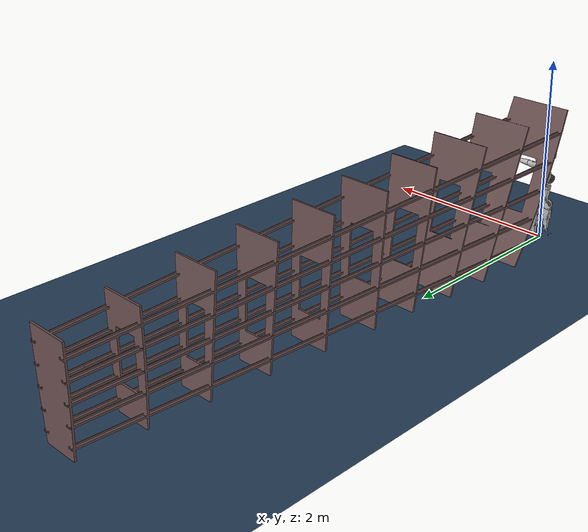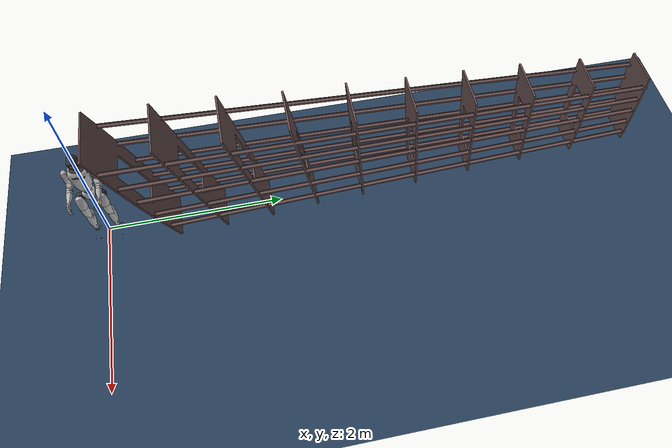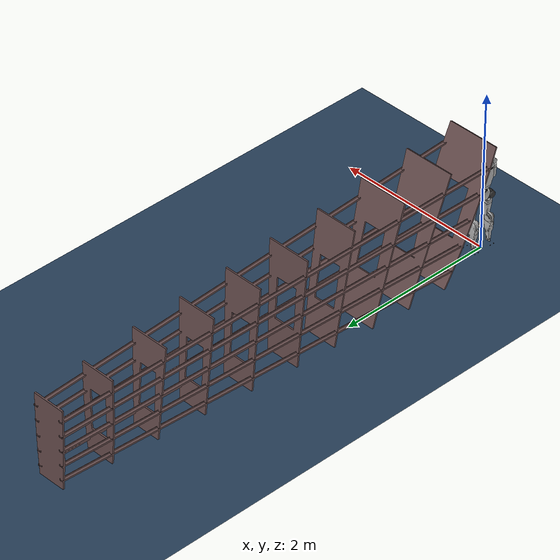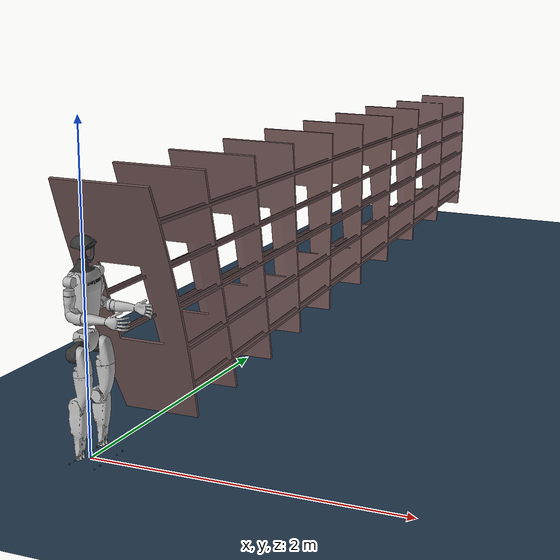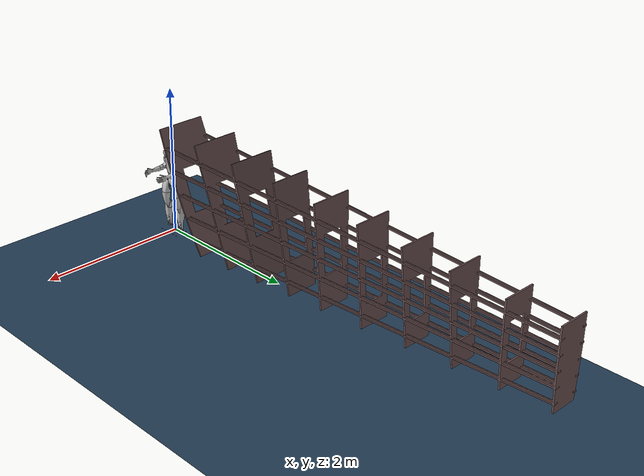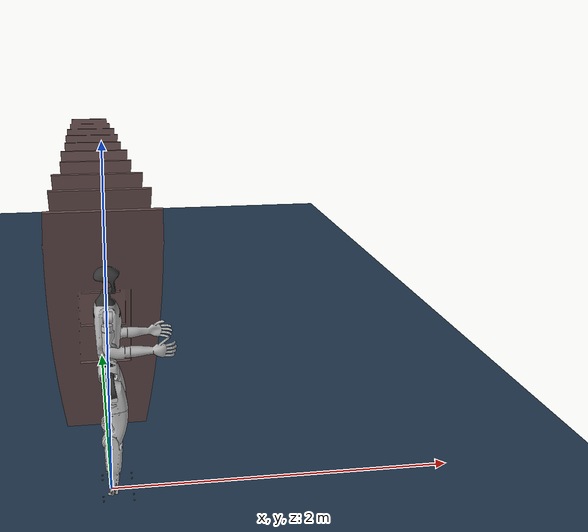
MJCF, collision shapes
<mujoco model="g1 scene">

  <compiler angle="radian"/>
  <include file="g1_description/g1_23dof.xml"/>

  <!-- WORLD ENVIRONMENT-->
  <include file="world_description/vertical_stabilizer.xml" />

  <statistic center="0 0 0.6" extent="2.0"/>

  <default>
      <default class="world_visual">
          <geom condim="1" contype="0" conaffinity="0" group="0"/>
      </default>
      <default class="world_collision">
          <geom contype="3" conaffinity="2" condim="6" group="2" friction="0.5 0.005 0.0001"/>
      </default>
  </default>

  <visual>
    <headlight diffuse="0.6 0.6 0.6" ambient="0.3 0.3 0.3" specular="0 0 0"/>
    <rgba haze="0.15 0.25 0.35 1"/>
    <global azimuth="160" elevation="-20"/>
  </visual>

  <asset>
    <texture type="skybox" builtin="gradient" rgb1="0.3 0.5 0.7" rgb2="0 0 0" width="512" height="3072"/>
    <texture type="2d" name="groundplane" builtin="checker" mark="edge" rgb1="0.2 0.3 0.4" rgb2="0.1 0.2 0.3"
      markrgb="0.8 0.8 0.8" width="300" height="300"/>
    <material name="groundplane" texture="groundplane" texuniform="true" texrepeat="5 5" reflectance="0.2"/>
  </asset>

  <worldbody>
    <light pos="0 0 3.5" dir="0 0 -1" directional="true"/>
    <geom name="floor" size="0 0 0.05" type="plane" material="groundplane" class="world_collision"/>
  </worldbody>

</mujoco>

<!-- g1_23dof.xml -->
<mujoco model="g1_23dof">

  <asset>
    <mesh name="pelvis" file="g1_description/meshes/pelvis.STL"/>
    <mesh name="pelvis_contour_link" file="g1_description/meshes/pelvis_contour_link.STL"/>
    <mesh name="left_hip_pitch_link" file="g1_description/meshes/left_hip_pitch_link.STL"/>
    <mesh name="left_hip_roll_link" file="g1_description/meshes/left_hip_roll_link.STL"/>
    <mesh name="left_hip_yaw_link" file="g1_description/meshes/left_hip_yaw_link.STL"/>
    <mesh name="left_knee_link" file="g1_description/meshes/left_knee_link.STL"/>
    <mesh name="left_ankle_pitch_link" file="g1_description/meshes/left_ankle_pitch_link.STL"/>
    <mesh name="left_ankle_roll_link" file="g1_description/meshes/left_ankle_roll_link.STL"/>
    <mesh name="right_hip_pitch_link" file="g1_description/meshes/right_hip_pitch_link.STL"/>
    <mesh name="right_hip_roll_link" file="g1_description/meshes/right_hip_roll_link.STL"/>
    <mesh name="right_hip_yaw_link" file="g1_description/meshes/right_hip_yaw_link.STL"/>
    <mesh name="right_knee_link" file="g1_description/meshes/right_knee_link.STL"/>
    <mesh name="right_ankle_pitch_link" file="g1_description/meshes/right_ankle_pitch_link.STL"/>
    <mesh name="right_ankle_roll_link" file="g1_description/meshes/right_ankle_roll_link.STL"/>
    <mesh name="waist_yaw_link" file="g1_description/meshes/waist_yaw_link.STL"/>
    <mesh name="torso_link" file="g1_description/meshes/torso_link.STL"/>
    <mesh name="logo_link" file="g1_description/meshes/logo_link.STL"/>
    <mesh name="head_link" file="g1_description/meshes/head_link.STL"/>
    <mesh name="waist_support_link" file="g1_description/meshes/waist_support_link.STL"/>
    <mesh name="left_shoulder_pitch_link" file="g1_description/meshes/left_shoulder_pitch_link.STL"/>
    <mesh name="left_shoulder_roll_link" file="g1_description/meshes/left_shoulder_roll_link.STL"/>
    <mesh name="left_shoulder_yaw_link" file="g1_description/meshes/left_shoulder_yaw_link.STL"/>
    <mesh name="left_elbow_link" file="g1_description/meshes/left_elbow_link.STL"/>
    <mesh name="left_wrist_roll_rubber_hand" file="g1_description/meshes/left_wrist_roll_rubber_hand.STL"/>
    <mesh name="right_shoulder_pitch_link" file="g1_description/meshes/right_shoulder_pitch_link.STL"/>
    <mesh name="right_shoulder_roll_link" file="g1_description/meshes/right_shoulder_roll_link.STL"/>
    <mesh name="right_shoulder_yaw_link" file="g1_description/meshes/right_shoulder_yaw_link.STL"/>
    <mesh name="right_elbow_link" file="g1_description/meshes/right_elbow_link.STL"/>
    <mesh name="right_wrist_roll_rubber_hand" file="g1_description/meshes/right_wrist_roll_rubber_hand.STL"/>
  </asset>

  <worldbody>
    <body name="pelvis" pos="0 0 0.793">
      <inertial pos="0 0 -0.07605" quat="1 0 -0.000399148 0" mass="3.813" diaginertia="0.010549 0.0093089 0.0079184"/>
      <joint name="floating_base_joint" type="free" limited="false" actuatorfrclimited="false"/>
      <geom type="mesh" contype="0" conaffinity="0" group="1" density="0" rgba="0.2 0.2 0.2 1" mesh="pelvis"/>
      <geom type="mesh" contype="0" conaffinity="0" group="1" density="0" rgba="0.7 0.7 0.7 1" mesh="pelvis_contour_link"/>
      <geom type="mesh" rgba="0.7 0.7 0.7 1" mesh="pelvis_contour_link"/>
      <site name="imu_in_pelvis" size="0.01" pos="0.04525 0 -0.08339"/>
      <body name="left_hip_pitch_link" pos="0 0.064452 -0.1027">
        <inertial pos="0.002741 0.047791 -0.02606" quat="0.954862 0.293964 0.0302556 0.030122" mass="1.35" diaginertia="0.00181517 0.00153422 0.00116212"/>
        <joint name="left_hip_pitch_joint" pos="0 0 0" axis="0 1 0" range="-2.5307 2.8798" actuatorfrcrange="-88 88"/>
        <geom type="mesh" contype="0" conaffinity="0" group="1" density="0" rgba="0.2 0.2 0.2 1" mesh="left_hip_pitch_link"/>
        <geom type="mesh" rgba="0.2 0.2 0.2 1" mesh="left_hip_pitch_link"/>
        <body name="left_hip_roll_link" pos="0 0.052 -0.030465" quat="0.996179 0 -0.0873386 0">
          <inertial pos="0.029812 -0.001045 -0.087934" quat="0.977808 -1.97119e-05 0.205576 -0.0403793" mass="1.52" diaginertia="0.00254986 0.00241169 0.00148755"/>
          <joint name="left_hip_roll_joint" pos="0 0 0" axis="1 0 0" range="-0.5236 2.9671" actuatorfrcrange="-88 88"/>
          <geom type="mesh" contype="0" conaffinity="0" group="1" density="0" rgba="0.7 0.7 0.7 1" mesh="left_hip_roll_link"/>
          <geom type="mesh" rgba="0.7 0.7 0.7 1" mesh="left_hip_roll_link"/>
          <body name="left_hip_yaw_link" pos="0.025001 0 -0.12412">
            <inertial pos="-0.057709 -0.010981 -0.15078" quat="0.600598 0.15832 0.223482 0.751181" mass="1.702" diaginertia="0.00776166 0.00717575 0.00160139"/>
            <joint name="left_hip_yaw_joint" pos="0 0 0" axis="0 0 1" range="-2.7576 2.7576" actuatorfrcrange="-88 88"/>
            <geom type="mesh" contype="0" conaffinity="0" group="1" density="0" rgba="0.7 0.7 0.7 1" mesh="left_hip_yaw_link"/>
            <geom type="mesh" rgba="0.7 0.7 0.7 1" mesh="left_hip_yaw_link"/>
            <body name="left_knee_link" pos="-0.078273 0.0021489 -0.17734" quat="0.996179 0 0.0873386 0">
              <inertial pos="0.005457 0.003964 -0.12074" quat="0.923418 -0.0327699 0.0158246 0.382067" mass="1.932" diaginertia="0.0113804 0.0112778 0.00146458"/>
              <joint name="left_knee_joint" pos="0 0 0" axis="0 1 0" range="-0.087267 2.8798" actuatorfrcrange="-139 139"/>
              <geom type="mesh" contype="0" conaffinity="0" group="1" density="0" rgba="0.7 0.7 0.7 1" mesh="left_knee_link"/>
              <geom type="mesh" rgba="0.7 0.7 0.7 1" mesh="left_knee_link"/>
              <body name="left_ankle_pitch_link" pos="0 -9.4445e-05 -0.30001">
                <inertial pos="-0.007269 0 0.011137" quat="0.603053 0.369225 0.369225 0.603053" mass="0.074" diaginertia="1.89e-05 1.40805e-05 6.9195e-06"/>
                <joint name="left_ankle_pitch_joint" pos="0 0 0" axis="0 1 0" range="-0.87267 0.5236" actuatorfrcrange="-50 50"/>
                <geom type="mesh" contype="0" conaffinity="0" group="1" density="0" rgba="0.7 0.7 0.7 1" mesh="left_ankle_pitch_link"/>
                <geom type="mesh" rgba="0.7 0.7 0.7 1" mesh="left_ankle_pitch_link"/>
                <body name="left_ankle_roll_link" pos="0 0 -0.017558">
                  <inertial pos="0.026505 0 -0.016425" quat="-0.000481092 0.728482 -0.000618967 0.685065" mass="0.608" diaginertia="0.00167218 0.0016161 0.000217621"/>
                  <joint name="left_ankle_roll_joint" pos="0 0 0" axis="1 0 0" range="-0.2618 0.2618" actuatorfrcrange="-50 50"/>
                  <geom type="mesh" contype="0" conaffinity="0" group="1" density="0" rgba="0.2 0.2 0.2 1" mesh="left_ankle_roll_link"/>
                  <geom size="0.005" pos="-0.05 0.025 -0.03" rgba="0.2 0.2 0.2 1"/>
                  <geom size="0.005" pos="-0.05 -0.025 -0.03" rgba="0.2 0.2 0.2 1"/>
                  <geom size="0.005" pos="0.12 0.03 -0.03" rgba="0.2 0.2 0.2 1"/>
                  <geom size="0.005" pos="0.12 -0.03 -0.03" rgba="0.2 0.2 0.2 1"/>
                </body>
              </body>
            </body>
          </body>
        </body>
      </body>
      <body name="right_hip_pitch_link" pos="0 -0.064452 -0.1027">
        <inertial pos="0.002741 -0.047791 -0.02606" quat="0.954862 -0.293964 0.0302556 -0.030122" mass="1.35" diaginertia="0.00181517 0.00153422 0.00116212"/>
        <joint name="right_hip_pitch_joint" pos="0 0 0" axis="0 1 0" range="-2.5307 2.8798" actuatorfrcrange="-88 88"/>
        <geom type="mesh" contype="0" conaffinity="0" group="1" density="0" rgba="0.2 0.2 0.2 1" mesh="right_hip_pitch_link"/>
        <geom type="mesh" rgba="0.2 0.2 0.2 1" mesh="right_hip_pitch_link"/>
        <body name="right_hip_roll_link" pos="0 -0.052 -0.030465" quat="0.996179 0 -0.0873386 0">
          <inertial pos="0.029812 0.001045 -0.087934" quat="0.977808 1.97119e-05 0.205576 0.0403793" mass="1.52" diaginertia="0.00254986 0.00241169 0.00148755"/>
          <joint name="right_hip_roll_joint" pos="0 0 0" axis="1 0 0" range="-2.9671 0.5236" actuatorfrcrange="-88 88"/>
          <geom type="mesh" contype="0" conaffinity="0" group="1" density="0" rgba="0.7 0.7 0.7 1" mesh="right_hip_roll_link"/>
          <geom type="mesh" rgba="0.7 0.7 0.7 1" mesh="right_hip_roll_link"/>
          <body name="right_hip_yaw_link" pos="0.025001 0 -0.12412">
            <inertial pos="-0.057709 0.010981 -0.15078" quat="0.751181 0.223482 0.15832 0.600598" mass="1.702" diaginertia="0.00776166 0.00717575 0.00160139"/>
            <joint name="right_hip_yaw_joint" pos="0 0 0" axis="0 0 1" range="-2.7576 2.7576" actuatorfrcrange="-88 88"/>
            <geom type="mesh" contype="0" conaffinity="0" group="1" density="0" rgba="0.7 0.7 0.7 1" mesh="right_hip_yaw_link"/>
            <geom type="mesh" rgba="0.7 0.7 0.7 1" mesh="right_hip_yaw_link"/>
            <body name="right_knee_link" pos="-0.078273 -0.0021489 -0.17734" quat="0.996179 0 0.0873386 0">
              <inertial pos="0.005457 -0.003964 -0.12074" quat="0.923439 0.0345276 0.0116333 -0.382012" mass="1.932" diaginertia="0.011374 0.0112843 0.00146452"/>
              <joint name="right_knee_joint" pos="0 0 0" axis="0 1 0" range="-0.087267 2.8798" actuatorfrcrange="-139 139"/>
              <geom type="mesh" contype="0" conaffinity="0" group="1" density="0" rgba="0.7 0.7 0.7 1" mesh="right_knee_link"/>
              <geom type="mesh" rgba="0.7 0.7 0.7 1" mesh="right_knee_link"/>
              <body name="right_ankle_pitch_link" pos="0 9.4445e-05 -0.30001">
                <inertial pos="-0.007269 0 0.011137" quat="0.603053 0.369225 0.369225 0.603053" mass="0.074" diaginertia="1.89e-05 1.40805e-05 6.9195e-06"/>
                <joint name="right_ankle_pitch_joint" pos="0 0 0" axis="0 1 0" range="-0.87267 0.5236" actuatorfrcrange="-50 50"/>
                <geom type="mesh" contype="0" conaffinity="0" group="1" density="0" rgba="0.7 0.7 0.7 1" mesh="right_ankle_pitch_link"/>
                <geom type="mesh" rgba="0.7 0.7 0.7 1" mesh="right_ankle_pitch_link"/>
                <body name="right_ankle_roll_link" pos="0 0 -0.017558">
                  <inertial pos="0.026505 0 -0.016425" quat="0.000481092 0.728482 0.000618967 0.685065" mass="0.608" diaginertia="0.00167218 0.0016161 0.000217621"/>
                  <joint name="right_ankle_roll_joint" pos="0 0 0" axis="1 0 0" range="-0.2618 0.2618" actuatorfrcrange="-50 50"/>
                  <geom type="mesh" contype="0" conaffinity="0" group="1" density="0" rgba="0.2 0.2 0.2 1" mesh="right_ankle_roll_link"/>
                  <geom size="0.005" pos="-0.05 0.025 -0.03" rgba="0.2 0.2 0.2 1"/>
                  <geom size="0.005" pos="-0.05 -0.025 -0.03" rgba="0.2 0.2 0.2 1"/>
                  <geom size="0.005" pos="0.12 0.03 -0.03" rgba="0.2 0.2 0.2 1"/>
                  <geom size="0.005" pos="0.12 -0.03 -0.03" rgba="0.2 0.2 0.2 1"/>
                </body>
              </body>
            </body>
          </body>
        </body>
      </body>
      <body name="torso_link" pos="-0.0039635 0 0.054">
        <inertial pos="0.0034309 0.00025505 0.174524" quat="0.99988 0.000261157 0.0149809 -0.0038211" mass="9.842" diaginertia="0.135151 0.123088 0.0327256"/>
        <joint name="waist_yaw_joint" pos="0 0 0" axis="0 0 1" range="-2.618 2.618" actuatorfrcrange="-88 88"/>
        <geom type="mesh" contype="0" conaffinity="0" group="1" density="0" rgba="0.7 0.7 0.7 1" mesh="torso_link"/>
        <geom type="mesh" rgba="0.7 0.7 0.7 1" mesh="torso_link"/>
        <geom pos="0.0039635 0 -0.054" quat="1 0 0 0" type="mesh" contype="0" conaffinity="0" group="1" density="0" rgba="0.7 0.7 0.7 1" mesh="waist_yaw_link"/>
        <geom pos="0.0039635 0 -0.054" quat="1 0 0 0" type="mesh" contype="0" conaffinity="0" group="1" density="0" rgba="0.2 0.2 0.2 1" mesh="logo_link"/>
        <geom pos="0.0039635 0 -0.054" quat="1 0 0 0" type="mesh" rgba="0.2 0.2 0.2 1" mesh="logo_link"/>
        <geom pos="0.0039635 0 -0.054" type="mesh" contype="0" conaffinity="0" group="1" density="0" rgba="0.2 0.2 0.2 1" mesh="head_link"/>
        <geom pos="0.0039635 0 -0.054" type="mesh" rgba="0.2 0.2 0.2 1" mesh="head_link"/>
        <geom pos="0.0039635 0 -0.054" quat="1 0 0 0" type="mesh" contype="0" conaffinity="0" group="1" density="0" rgba="0.7 0.7 0.7 1" mesh="waist_support_link"/>
        <geom pos="0.0039635 0 -0.054" quat="1 0 0 0" type="mesh" rgba="0.7 0.7 0.7 1" mesh="waist_support_link"/>
        <site name="imu_in_torso" size="0.01" pos="-0.03959 -0.00224 0.13792"/>
        <body name="left_shoulder_pitch_link" pos="0.0039563 0.10022 0.23778" quat="0.990264 0.139201 1.38722e-05 -9.86868e-05">
          <inertial pos="0 0.035892 -0.011628" quat="0.654152 0.0130458 -0.326267 0.68225" mass="0.718" diaginertia="0.000465864 0.000432842 0.000406394"/>
          <joint name="left_shoulder_pitch_joint" pos="0 0 0" axis="0 1 0" range="-3.0892 2.6704" actuatorfrcrange="-25 25"/>
          <geom type="mesh" contype="0" conaffinity="0" group="1" density="0" rgba="0.7 0.7 0.7 1" mesh="left_shoulder_pitch_link"/>
          <geom size="0.03 0.025" pos="0 0.04 -0.01" quat="0.707107 0 0.707107 0" type="cylinder" rgba="0.7 0.7 0.7 1"/>
          <body name="left_shoulder_roll_link" pos="0 0.038 -0.013831" quat="0.990268 -0.139172 0 0">
            <inertial pos="-0.000227 0.00727 -0.063243" quat="0.701256 -0.0196223 -0.00710317 0.712604" mass="0.643" diaginertia="0.000691311 0.000618011 0.000388977"/>
            <joint name="left_shoulder_roll_joint" pos="0 0 0" axis="1 0 0" range="-1.5882 2.2515" actuatorfrcrange="-25 25"/>
            <geom type="mesh" contype="0" conaffinity="0" group="1" density="0" rgba="0.7 0.7 0.7 1" mesh="left_shoulder_roll_link"/>
            <geom size="0.03 0.015" pos="-0.004 0.006 -0.053" type="cylinder" rgba="0.7 0.7 0.7 1"/>
            <body name="left_shoulder_yaw_link" pos="0 0.00624 -0.1032">
              <inertial pos="0.010773 -0.002949 -0.072009" quat="0.716879 -0.0964829 -0.0679942 0.687134" mass="0.734" diaginertia="0.00106187 0.00103217 0.000400661"/>
              <joint name="left_shoulder_yaw_joint" pos="0 0 0" axis="0 0 1" range="-2.618 2.618" actuatorfrcrange="-25 25"/>
              <geom type="mesh" contype="0" conaffinity="0" group="1" density="0" rgba="0.7 0.7 0.7 1" mesh="left_shoulder_yaw_link"/>
              <geom type="mesh" rgba="0.7 0.7 0.7 1" mesh="left_shoulder_yaw_link"/>
              <body name="left_elbow_link" pos="0.015783 0 -0.080518">
                <inertial pos="0.064956 0.004454 -0.010062" quat="0.541765 0.636132 0.388821 0.388129" mass="0.6" diaginertia="0.000443035 0.000421612 0.000259353"/>
                <joint name="left_elbow_joint" pos="0 0 0" axis="0 1 0" range="-1.0472 2.0944" actuatorfrcrange="-25 25"/>
                <geom type="mesh" contype="0" conaffinity="0" group="1" density="0" rgba="0.7 0.7 0.7 1" mesh="left_elbow_link"/>
                <geom type="mesh" rgba="0.7 0.7 0.7 1" mesh="left_elbow_link"/>
                <body name="left_wrist_roll_rubber_hand" pos="0.1 0.00188791 -0.01">
                  <inertial pos="0.107947 0.00163512 0.00202245" quat="0.494051 0.504265 0.48416 0.516933" mass="0.356929" diaginertia="0.00200292 0.0019426 0.000195232"/>
                  <joint name="left_wrist_roll_joint" pos="0 0 0" axis="1 0 0" range="-1.97222 1.97222" actuatorfrcrange="-25 25"/>
                  <geom type="mesh" contype="0" conaffinity="0" group="1" density="0" rgba="0.7 0.7 0.7 1" mesh="left_wrist_roll_rubber_hand"/>
                  <geom type="mesh" rgba="0.7 0.7 0.7 1" mesh="left_wrist_roll_rubber_hand"/>
                </body>
              </body>
            </body>
          </body>
        </body>
        <body name="right_shoulder_pitch_link" pos="0.0039563 -0.10021 0.23778" quat="0.990264 -0.139201 1.38722e-05 9.86868e-05">
          <inertial pos="0 -0.035892 -0.011628" quat="0.68225 -0.326267 0.0130458 0.654152" mass="0.718" diaginertia="0.000465864 0.000432842 0.000406394"/>
          <joint name="right_shoulder_pitch_joint" pos="0 0 0" axis="0 1 0" range="-3.0892 2.6704" actuatorfrcrange="-25 25"/>
          <geom type="mesh" contype="0" conaffinity="0" group="1" density="0" rgba="0.7 0.7 0.7 1" mesh="right_shoulder_pitch_link"/>
          <geom size="0.03 0.025" pos="0 -0.04 -0.01" quat="0.707107 0 0.707107 0" type="cylinder" rgba="0.7 0.7 0.7 1"/>
          <body name="right_shoulder_roll_link" pos="0 -0.038 -0.013831" quat="0.990268 0.139172 0 0">
            <inertial pos="-0.000227 -0.00727 -0.063243" quat="0.712604 -0.00710317 -0.0196223 0.701256" mass="0.643" diaginertia="0.000691311 0.000618011 0.000388977"/>
            <joint name="right_shoulder_roll_joint" pos="0 0 0" axis="1 0 0" range="-2.2515 1.5882" actuatorfrcrange="-25 25"/>
            <geom type="mesh" contype="0" conaffinity="0" group="1" density="0" rgba="0.7 0.7 0.7 1" mesh="right_shoulder_roll_link"/>
            <geom size="0.03 0.015" pos="-0.004 -0.006 -0.053" type="cylinder" rgba="0.7 0.7 0.7 1"/>
            <body name="right_shoulder_yaw_link" pos="0 -0.00624 -0.1032">
              <inertial pos="0.010773 0.002949 -0.072009" quat="0.687134 -0.0679942 -0.0964829 0.716879" mass="0.734" diaginertia="0.00106187 0.00103217 0.000400661"/>
              <joint name="right_shoulder_yaw_joint" pos="0 0 0" axis="0 0 1" range="-2.618 2.618" actuatorfrcrange="-25 25"/>
              <geom type="mesh" contype="0" conaffinity="0" group="1" density="0" rgba="0.7 0.7 0.7 1" mesh="right_shoulder_yaw_link"/>
              <geom type="mesh" rgba="0.7 0.7 0.7 1" mesh="right_shoulder_yaw_link"/>
              <body name="right_elbow_link" pos="0.015783 0 -0.080518">
                <inertial pos="0.064956 -0.004454 -0.010062" quat="0.388129 0.388821 0.636132 0.541765" mass="0.6" diaginertia="0.000443035 0.000421612 0.000259353"/>
                <joint name="right_elbow_joint" pos="0 0 0" axis="0 1 0" range="-1.0472 2.0944" actuatorfrcrange="-25 25"/>
                <geom type="mesh" contype="0" conaffinity="0" group="1" density="0" rgba="0.7 0.7 0.7 1" mesh="right_elbow_link"/>
                <geom type="mesh" rgba="0.7 0.7 0.7 1" mesh="right_elbow_link"/>
                <body name="right_wrist_roll_rubber_hand" pos="0.1 -0.00188791 -0.01">
                  <inertial pos="0.107947 -0.00163512 0.00202245" quat="0.516933 0.48416 0.504265 0.494051" mass="0.356929" diaginertia="0.00200292 0.0019426 0.000195232"/>
                  <joint name="right_wrist_roll_joint" pos="0 0 0" axis="1 0 0" range="-1.97222 1.97222" actuatorfrcrange="-25 25"/>
                  <geom type="mesh" contype="0" conaffinity="0" group="1" density="0" rgba="0.7 0.7 0.7 1" mesh="right_wrist_roll_rubber_hand"/>
                  <geom type="mesh" rgba="0.7 0.7 0.7 1" mesh="right_wrist_roll_rubber_hand"/>
                </body>
              </body>
            </body>
          </body>
        </body>
      </body>
    </body>
  </worldbody>

  <actuator>
    <motor name="left_hip_pitch_joint" joint="left_hip_pitch_joint"/>
    <motor name="left_hip_roll_joint" joint="left_hip_roll_joint"/>
    <motor name="left_hip_yaw_joint" joint="left_hip_yaw_joint"/>
    <motor name="left_knee_joint" joint="left_knee_joint"/>
    <motor name="left_ankle_pitch_joint" joint="left_ankle_pitch_joint"/>
    <motor name="left_ankle_roll_joint" joint="left_ankle_roll_joint"/>
    <motor name="right_hip_pitch_joint" joint="right_hip_pitch_joint"/>
    <motor name="right_hip_roll_joint" joint="right_hip_roll_joint"/>
    <motor name="right_hip_yaw_joint" joint="right_hip_yaw_joint"/>
    <motor name="right_knee_joint" joint="right_knee_joint"/>
    <motor name="right_ankle_pitch_joint" joint="right_ankle_pitch_joint"/>
    <motor name="right_ankle_roll_joint" joint="right_ankle_roll_joint"/>
    <motor name="waist_yaw_joint" joint="waist_yaw_joint"/>
    <motor name="left_shoulder_pitch_joint" joint="left_shoulder_pitch_joint"/>
    <motor name="left_shoulder_roll_joint" joint="left_shoulder_roll_joint"/>
    <motor name="left_shoulder_yaw_joint" joint="left_shoulder_yaw_joint"/>
    <motor name="left_elbow_joint" joint="left_elbow_joint"/>
    <motor name="left_wrist_roll_joint" joint="left_wrist_roll_joint"/>
    <motor name="right_shoulder_pitch_joint" joint="right_shoulder_pitch_joint"/>
    <motor name="right_shoulder_roll_joint" joint="right_shoulder_roll_joint"/>
    <motor name="right_shoulder_yaw_joint" joint="right_shoulder_yaw_joint"/>
    <motor name="right_elbow_joint" joint="right_elbow_joint"/>
    <motor name="right_wrist_roll_joint" joint="right_wrist_roll_joint"/>
  </actuator>

  <sensor>
    <gyro name="imu-torso-angular-velocity" site="imu_in_torso" noise="5e-4" cutoff="34.9"/>
    <accelerometer name="imu-torso-linear-acceleration" site="imu_in_torso" noise="1e-2" cutoff="157"/>
    <gyro name="imu-pelvis-angular-velocity" site="imu_in_pelvis" noise="5e-4" cutoff="34.9"/>
    <accelerometer name="imu-pelvis-linear-acceleration" site="imu_in_pelvis" noise="1e-2" cutoff="157"/>
  </sensor>

  <!-- setup scene -->
</mujoco>

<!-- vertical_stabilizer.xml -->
<mujoco model="vertical_stabilizer">

    <!-- NOTE: .obj are exported in cm; .stl are exported in .mm (if this is the units in fusion); mujoco expects meters. Scale accordingly. -->

    <asset>
        <mesh name="vertical_stabilizer_mesh" file="world_description/meshes/v_stabilizer.stl" scale="0.001 0.001 0.001"/>
    </asset>

    <worldbody>
        <body name="vertical_stabilizer" pos="0 0.5 0.8">
            <geom type="mesh" mesh="vertical_stabilizer_mesh" rgba="0.4 0.3 0.3 1.0" euler="0 0 0" />
        </body>
    </worldbody>

</mujoco>
